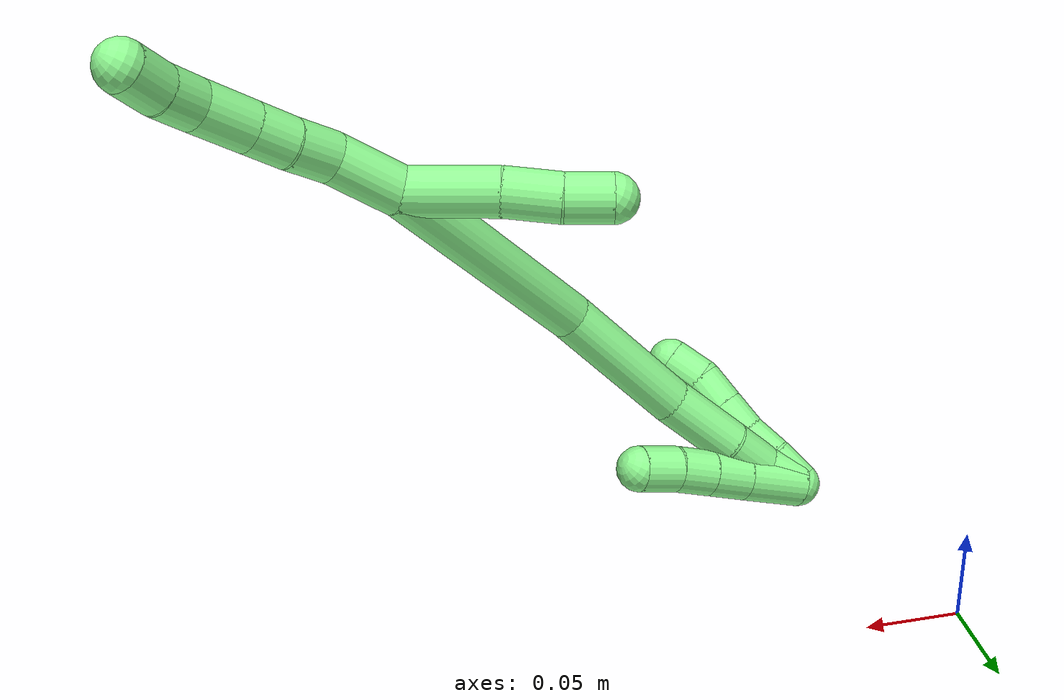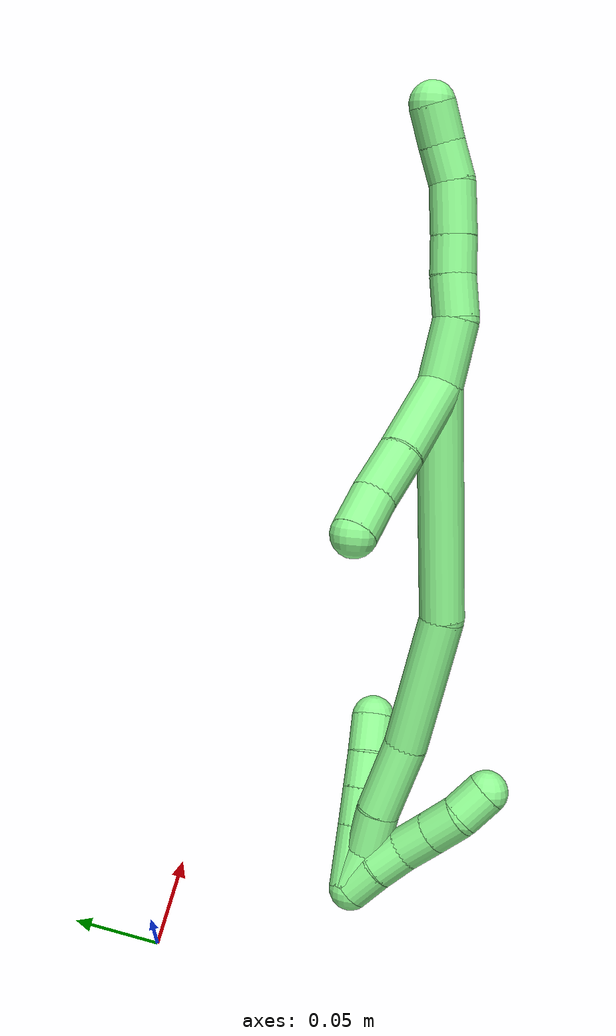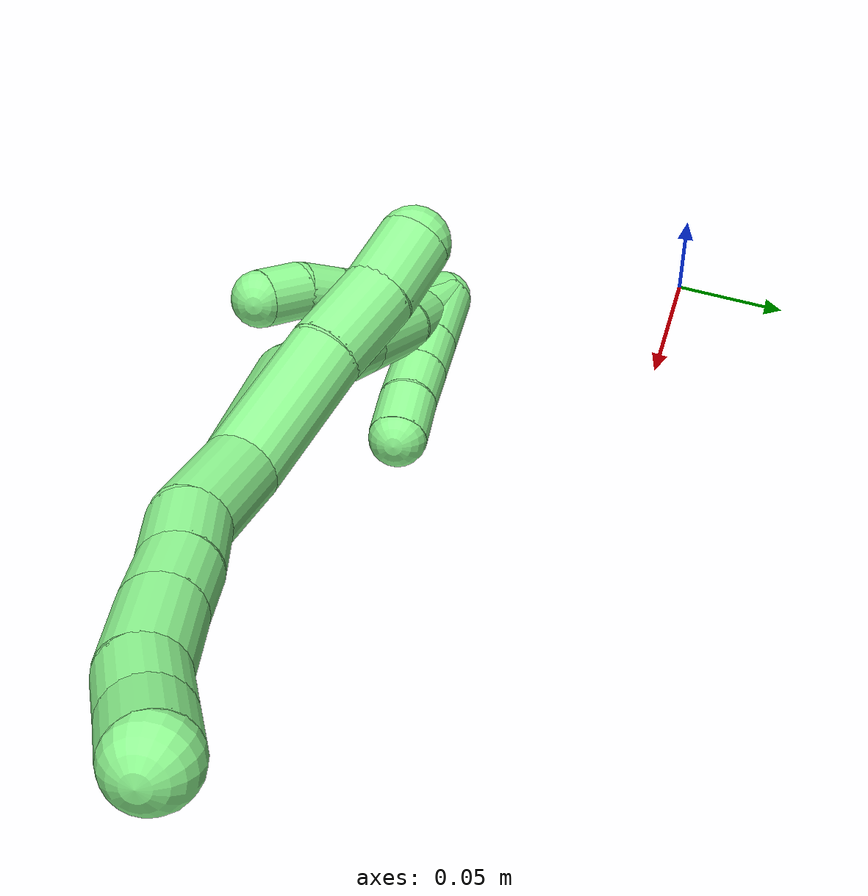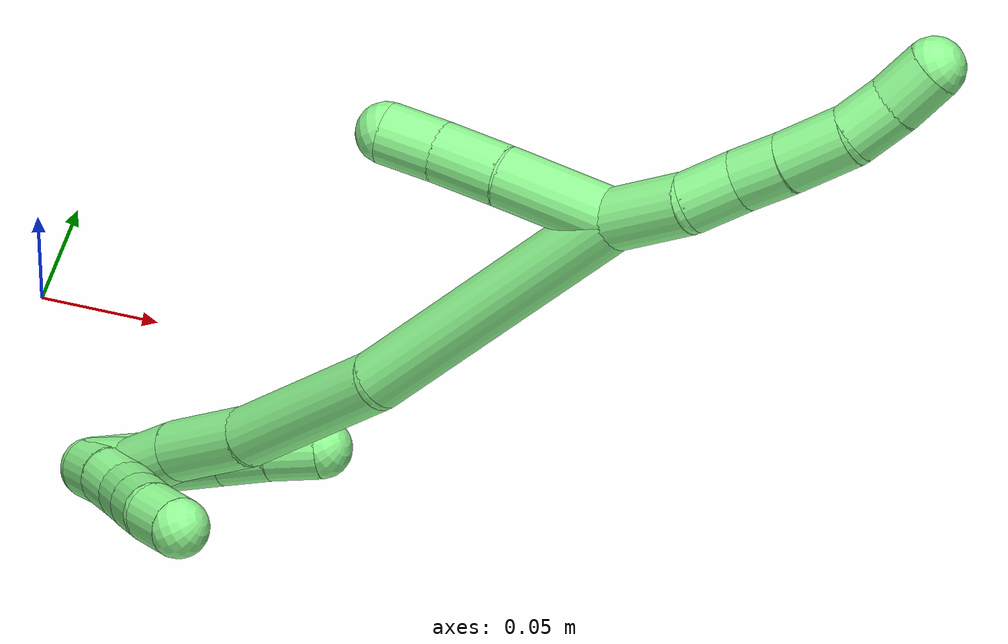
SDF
<sdf version="1.7">
 <world name="default">
  <model name="13">
   <static>0</static>
   <link name="13">
    <collision name="collision-cylinder-e_1_2_8">
     <pose>0.001662 -0.002811 0.017897 0.155767 0.091499 0.007146</pose>
     <geometry><cylinder><radius>0.0125</radius><length>0.036385</length></cylinder></geometry>
     <surface>
      <friction><ode><mu>1.16</mu><mu2>1.16</mu2><slip1>0</slip1><slip2>0</slip2></ode></friction>
      <contact><ode><kp>1e+06</kp><kd>1</kd><max_vel>0</max_vel><min_depth>0.001</min_depth></ode></contact>
     </surface>
    </collision>
    <visual name="visual-cylinder-e_1_2_8">
     <pose>0.001662 -0.002811 0.017897 0.155767 0.091499 0.007146</pose>
     <geometry><cylinder><radius>0.0125</radius><length>0.036385</length></cylinder></geometry>
     <material><ambient>0.564706 0.984314 0.572549 1</ambient></material>
    </visual>
    <collision name="collision-cylinder-e_2_8_9">
     <pose>0.005113 -0.003856 0.047055 -0.155428 0.155662 -0.012146</pose>
     <geometry><cylinder><radius>0.0125</radius><length>0.023076</length></cylinder></geometry>
     <surface>
      <friction><ode><mu>1.16</mu><mu2>1.16</mu2><slip1>0</slip1><slip2>0</slip2></ode></friction>
      <contact><ode><kp>1e+06</kp><kd>1</kd><max_vel>0</max_vel><min_depth>0.001</min_depth></ode></contact>
     </surface>
    </collision>
    <visual name="visual-cylinder-e_2_8_9">
     <pose>0.005113 -0.003856 0.047055 -0.155428 0.155662 -0.012146</pose>
     <geometry><cylinder><radius>0.0125</radius><length>0.023076</length></cylinder></geometry>
     <material><ambient>0.564706 0.984314 0.572549 1</ambient></material>
    </visual>
    <collision name="collision-cylinder-e_3_9_10">
     <pose>0.008195 -0.001482 0.06849 -0.059842 0.126132 -0.00378</pose>
     <geometry><cylinder><radius>0.0125</radius><length>0.020548</length></cylinder></geometry>
     <surface>
      <friction><ode><mu>1.16</mu><mu2>1.16</mu2><slip1>0</slip1><slip2>0</slip2></ode></friction>
      <contact><ode><kp>1e+06</kp><kd>1</kd><max_vel>0</max_vel><min_depth>0.001</min_depth></ode></contact>
     </surface>
    </collision>
    <visual name="visual-cylinder-e_3_9_10">
     <pose>0.008195 -0.001482 0.06849 -0.059842 0.126132 -0.00378</pose>
     <geometry><cylinder><radius>0.0125</radius><length>0.020548</length></cylinder></geometry>
     <material><ambient>0.564706 0.984314 0.572549 1</ambient></material>
    </visual>
    <collision name="collision-cylinder-e_4_10_11">
     <pose>0.011069 0.000698 0.092599 -0.112222 0.112313 -0.006315</pose>
     <geometry><cylinder><radius>0.0125</radius><length>0.028224</length></cylinder></geometry>
     <surface>
      <friction><ode><mu>1.16</mu><mu2>1.16</mu2><slip1>0</slip1><slip2>0</slip2></ode></friction>
      <contact><ode><kp>1e+06</kp><kd>1</kd><max_vel>0</max_vel><min_depth>0.001</min_depth></ode></contact>
     </surface>
    </collision>
    <visual name="visual-cylinder-e_4_10_11">
     <pose>0.011069 0.000698 0.092599 -0.112222 0.112313 -0.006315</pose>
     <geometry><cylinder><radius>0.0125</radius><length>0.028224</length></cylinder></geometry>
     <material><ambient>0.564706 0.984314 0.572549 1</ambient></material>
    </visual>
    <collision name="collision-cylinder-e_5_11_12">
     <pose>0.013065 0.005846 0.116192 -0.354815 0.040249 -0.007217</pose>
     <geometry><cylinder><radius>0.0125</radius><length>0.020617</length></cylinder></geometry>
     <surface>
      <friction><ode><mu>1.16</mu><mu2>1.16</mu2><slip1>0</slip1><slip2>0</slip2></ode></friction>
      <contact><ode><kp>1e+06</kp><kd>1</kd><max_vel>0</max_vel><min_depth>0.001</min_depth></ode></contact>
     </surface>
    </collision>
    <visual name="visual-cylinder-e_5_11_12">
     <pose>0.013065 0.005846 0.116192 -0.354815 0.040249 -0.007217</pose>
     <geometry><cylinder><radius>0.0125</radius><length>0.020617</length></cylinder></geometry>
     <material><ambient>0.564706 0.984314 0.572549 1</ambient></material>
    </visual>
    <collision name="collision-cylinder-e_6_12_6">
     <pose>0.012534 0.012952 0.135776 -0.341446 -0.089577 0.015453</pose>
     <geometry><cylinder><radius>0.0125</radius><length>0.02115</length></cylinder></geometry>
     <surface>
      <friction><ode><mu>1.16</mu><mu2>1.16</mu2><slip1>0</slip1><slip2>0</slip2></ode></friction>
      <contact><ode><kp>1e+06</kp><kd>1</kd><max_vel>0</max_vel><min_depth>0.001</min_depth></ode></contact>
     </surface>
    </collision>
    <visual name="visual-cylinder-e_6_12_6">
     <pose>0.012534 0.012952 0.135776 -0.341446 -0.089577 0.015453</pose>
     <geometry><cylinder><radius>0.0125</radius><length>0.02115</length></cylinder></geometry>
     <material><ambient>0.564706 0.984314 0.572549 1</ambient></material>
    </visual>
    <collision name="collision-cylinder-e_1_2_13">
     <pose>-0.013349 0.009371 -0.017103 -2.64035 -0.600259 1.75937</pose>
     <geometry><cylinder><radius>0.0125</radius><length>0.047266</length></cylinder></geometry>
     <surface>
      <friction><ode><mu>1.16</mu><mu2>1.16</mu2><slip1>0</slip1><slip2>0</slip2></ode></friction>
      <contact><ode><kp>1e+06</kp><kd>1</kd><max_vel>0</max_vel><min_depth>0.001</min_depth></ode></contact>
     </surface>
    </collision>
    <visual name="visual-cylinder-e_1_2_13">
     <pose>-0.013349 0.009371 -0.017103 -2.64035 -0.600259 1.75937</pose>
     <geometry><cylinder><radius>0.0125</radius><length>0.047266</length></cylinder></geometry>
     <material><ambient>0.564706 0.984314 0.572549 1</ambient></material>
    </visual>
    <collision name="collision-cylinder-e_2_13_14">
     <pose>-0.03369 0.025078 -0.045146 -2.61662 -0.505097 1.53045</pose>
     <geometry><cylinder><radius>0.0125</radius><length>0.028894</length></cylinder></geometry>
     <surface>
      <friction><ode><mu>1.16</mu><mu2>1.16</mu2><slip1>0</slip1><slip2>0</slip2></ode></friction>
      <contact><ode><kp>1e+06</kp><kd>1</kd><max_vel>0</max_vel><min_depth>0.001</min_depth></ode></contact>
     </surface>
    </collision>
    <visual name="visual-cylinder-e_2_13_14">
     <pose>-0.03369 0.025078 -0.045146 -2.61662 -0.505097 1.53045</pose>
     <geometry><cylinder><radius>0.0125</radius><length>0.028894</length></cylinder></geometry>
     <material><ambient>0.564706 0.984314 0.572549 1</ambient></material>
    </visual>
    <collision name="collision-cylinder-e_3_14_5">
     <pose>-0.047372 0.035725 -0.064959 -2.68935 -0.596111 1.85604</pose>
     <geometry><cylinder><radius>0.0125</radius><length>0.02384</length></cylinder></geometry>
     <surface>
      <friction><ode><mu>1.16</mu><mu2>1.16</mu2><slip1>0</slip1><slip2>0</slip2></ode></friction>
      <contact><ode><kp>1e+06</kp><kd>1</kd><max_vel>0</max_vel><min_depth>0.001</min_depth></ode></contact>
     </surface>
    </collision>
    <visual name="visual-cylinder-e_3_14_5">
     <pose>-0.047372 0.035725 -0.064959 -2.68935 -0.596111 1.85604</pose>
     <geometry><cylinder><radius>0.0125</radius><length>0.02384</length></cylinder></geometry>
     <material><ambient>0.564706 0.984314 0.572549 1</ambient></material>
    </visual>
    <collision name="collision-cylinder-e_1_2_15">
     <pose>0.006685 -0.006966 -0.063772 3.03279 0.103828 1.52393</pose>
     <geometry><cylinder><radius>0.0125</radius><length>0.128998</length></cylinder></geometry>
     <surface>
      <friction><ode><mu>1.16</mu><mu2>1.16</mu2><slip1>0</slip1><slip2>0</slip2></ode></friction>
      <contact><ode><kp>1e+06</kp><kd>1</kd><max_vel>0</max_vel><min_depth>0.001</min_depth></ode></contact>
     </surface>
    </collision>
    <visual name="visual-cylinder-e_1_2_15">
     <pose>0.006685 -0.006966 -0.063772 3.03279 0.103828 1.52393</pose>
     <geometry><cylinder><radius>0.0125</radius><length>0.128998</length></cylinder></geometry>
     <material><ambient>0.564706 0.984314 0.572549 1</ambient></material>
    </visual>
    <collision name="collision-cylinder-e_2_15_16">
     <pose>0.018606 -0.007596 -0.165906 -2.9779 0.133867 -1.37029</pose>
     <geometry><cylinder><radius>0.0125</radius><length>0.078465</length></cylinder></geometry>
     <surface>
      <friction><ode><mu>1.16</mu><mu2>1.16</mu2><slip1>0</slip1><slip2>0</slip2></ode></friction>
      <contact><ode><kp>1e+06</kp><kd>1</kd><max_vel>0</max_vel><min_depth>0.001</min_depth></ode></contact>
     </surface>
    </collision>
    <visual name="visual-cylinder-e_2_15_16">
     <pose>0.018606 -0.007596 -0.165906 -2.9779 0.133867 -1.37029</pose>
     <geometry><cylinder><radius>0.0125</radius><length>0.078465</length></cylinder></geometry>
     <material><ambient>0.564706 0.984314 0.572549 1</ambient></material>
    </visual>
    <collision name="collision-cylinder-e_3_16_17">
     <pose>0.025038 0.004847 -0.224915 -2.85402 0.055477 -0.378668</pose>
     <geometry><cylinder><radius>0.0125</radius><length>0.043129</length></cylinder></geometry>
     <surface>
      <friction><ode><mu>1.16</mu><mu2>1.16</mu2><slip1>0</slip1><slip2>0</slip2></ode></friction>
      <contact><ode><kp>1e+06</kp><kd>1</kd><max_vel>0</max_vel><min_depth>0.001</min_depth></ode></contact>
     </surface>
    </collision>
    <visual name="visual-cylinder-e_3_16_17">
     <pose>0.025038 0.004847 -0.224915 -2.85402 0.055477 -0.378668</pose>
     <geometry><cylinder><radius>0.0125</radius><length>0.043129</length></cylinder></geometry>
     <material><ambient>0.564706 0.984314 0.572549 1</ambient></material>
    </visual>
    <collision name="collision-cylinder-e_4_17_18">
     <pose>0.027218 0.012952 -0.258331 -2.98637 0.075994 -0.909365</pose>
     <geometry><cylinder><radius>0.0125</radius><length>0.025924</length></cylinder></geometry>
     <surface>
      <friction><ode><mu>1.16</mu><mu2>1.16</mu2><slip1>0</slip1><slip2>0</slip2></ode></friction>
      <contact><ode><kp>1e+06</kp><kd>1</kd><max_vel>0</max_vel><min_depth>0.001</min_depth></ode></contact>
     </surface>
    </collision>
    <visual name="visual-cylinder-e_4_17_18">
     <pose>0.027218 0.012952 -0.258331 -2.98637 0.075994 -0.909365</pose>
     <geometry><cylinder><radius>0.0125</radius><length>0.025924</length></cylinder></geometry>
     <material><ambient>0.564706 0.984314 0.572549 1</ambient></material>
    </visual>
    <collision name="collision-cylinder-e_5_18_1">
     <pose>0.026955 0.018818 -0.282117 -2.80389 -0.106362 0.605321</pose>
     <geometry><cylinder><radius>0.0125</radius><length>0.023484</length></cylinder></geometry>
     <surface>
      <friction><ode><mu>1.16</mu><mu2>1.16</mu2><slip1>0</slip1><slip2>0</slip2></ode></friction>
      <contact><ode><kp>1e+06</kp><kd>1</kd><max_vel>0</max_vel><min_depth>0.001</min_depth></ode></contact>
     </surface>
    </collision>
    <visual name="visual-cylinder-e_5_18_1">
     <pose>0.026955 0.018818 -0.282117 -2.80389 -0.106362 0.605321</pose>
     <geometry><cylinder><radius>0.0125</radius><length>0.023484</length></cylinder></geometry>
     <material><ambient>0.564706 0.984314 0.572549 1</ambient></material>
    </visual>
    <collision name="collision-cylinder-e_1_1_19">
     <pose>0.031701 0.021465 -0.276651 0.074015 0.34786 0.013011</pose>
     <geometry><cylinder><radius>0.0125</radius><length>0.03516</length></cylinder></geometry>
     <surface>
      <friction><ode><mu>1.16</mu><mu2>1.16</mu2><slip1>0</slip1><slip2>0</slip2></ode></friction>
      <contact><ode><kp>1e+06</kp><kd>1</kd><max_vel>0</max_vel><min_depth>0.001</min_depth></ode></contact>
     </surface>
    </collision>
    <visual name="visual-cylinder-e_1_1_19">
     <pose>0.031701 0.021465 -0.276651 0.074015 0.34786 0.013011</pose>
     <geometry><cylinder><radius>0.0125</radius><length>0.03516</length></cylinder></geometry>
     <material><ambient>0.564706 0.984314 0.572549 1</ambient></material>
    </visual>
    <collision name="collision-cylinder-e_2_19_20">
     <pose>0.041331 0.019564 -0.249734 0.064938 0.334668 0.010973</pose>
     <geometry><cylinder><radius>0.0125</radius><length>0.022143</length></cylinder></geometry>
     <surface>
      <friction><ode><mu>1.16</mu><mu2>1.16</mu2><slip1>0</slip1><slip2>0</slip2></ode></friction>
      <contact><ode><kp>1e+06</kp><kd>1</kd><max_vel>0</max_vel><min_depth>0.001</min_depth></ode></contact>
     </surface>
    </collision>
    <visual name="visual-cylinder-e_2_19_20">
     <pose>0.041331 0.019564 -0.249734 0.064938 0.334668 0.010973</pose>
     <geometry><cylinder><radius>0.0125</radius><length>0.022143</length></cylinder></geometry>
     <material><ambient>0.564706 0.984314 0.572549 1</ambient></material>
    </visual>
    <collision name="collision-cylinder-e_3_20_21">
     <pose>0.048471 0.018224 -0.229483 0.067242 0.342117 0.01162</pose>
     <geometry><cylinder><radius>0.0125</radius><length>0.020887</length></cylinder></geometry>
     <surface>
      <friction><ode><mu>1.16</mu><mu2>1.16</mu2><slip1>0</slip1><slip2>0</slip2></ode></friction>
      <contact><ode><kp>1e+06</kp><kd>1</kd><max_vel>0</max_vel><min_depth>0.001</min_depth></ode></contact>
     </surface>
    </collision>
    <visual name="visual-cylinder-e_3_20_21">
     <pose>0.048471 0.018224 -0.229483 0.067242 0.342117 0.01162</pose>
     <geometry><cylinder><radius>0.0125</radius><length>0.020887</length></cylinder></geometry>
     <material><ambient>0.564706 0.984314 0.572549 1</ambient></material>
    </visual>
    <collision name="collision-cylinder-e_4_21_4">
     <pose>0.05668 0.017075 -0.209841 0.049601 0.446109 0.011253</pose>
     <geometry><cylinder><radius>0.0125</radius><length>0.02181</length></cylinder></geometry>
     <surface>
      <friction><ode><mu>1.16</mu><mu2>1.16</mu2><slip1>0</slip1><slip2>0</slip2></ode></friction>
      <contact><ode><kp>1e+06</kp><kd>1</kd><max_vel>0</max_vel><min_depth>0.001</min_depth></ode></contact>
     </surface>
    </collision>
    <visual name="visual-cylinder-e_4_21_4">
     <pose>0.05668 0.017075 -0.209841 0.049601 0.446109 0.011253</pose>
     <geometry><cylinder><radius>0.0125</radius><length>0.02181</length></cylinder></geometry>
     <material><ambient>0.564706 0.984314 0.572549 1</ambient></material>
    </visual>
    <collision name="collision-cylinder-e_1_1_22">
     <pose>0.024175 0.016031 -0.285829 0.738938 -0.153984 -0.059731</pose>
     <geometry><cylinder><radius>0.0125</radius><length>0.02</length></cylinder></geometry>
     <surface>
      <friction><ode><mu>1.16</mu><mu2>1.16</mu2><slip1>0</slip1><slip2>0</slip2></ode></friction>
      <contact><ode><kp>1e+06</kp><kd>1</kd><max_vel>0</max_vel><min_depth>0.001</min_depth></ode></contact>
     </surface>
    </collision>
    <visual name="visual-cylinder-e_1_1_22">
     <pose>0.024175 0.016031 -0.285829 0.738938 -0.153984 -0.059731</pose>
     <geometry><cylinder><radius>0.0125</radius><length>0.02</length></cylinder></geometry>
     <material><ambient>0.564706 0.984314 0.572549 1</ambient></material>
    </visual>
    <collision name="collision-cylinder-e_2_22_23">
     <pose>0.021833 0.002064 -0.271751 0.823592 -0.080904 -0.035352</pose>
     <geometry><cylinder><radius>0.0125</radius><length>0.02</length></cylinder></geometry>
     <surface>
      <friction><ode><mu>1.16</mu><mu2>1.16</mu2><slip1>0</slip1><slip2>0</slip2></ode></friction>
      <contact><ode><kp>1e+06</kp><kd>1</kd><max_vel>0</max_vel><min_depth>0.001</min_depth></ode></contact>
     </surface>
    </collision>
    <visual name="visual-cylinder-e_2_22_23">
     <pose>0.021833 0.002064 -0.271751 0.823592 -0.080904 -0.035352</pose>
     <geometry><cylinder><radius>0.0125</radius><length>0.02</length></cylinder></geometry>
     <material><ambient>0.564706 0.984314 0.572549 1</ambient></material>
    </visual>
    <collision name="collision-cylinder-e_3_23_24">
     <pose>0.018635 -0.012517 -0.258539 0.845902 -0.241362 -0.109064</pose>
     <geometry><cylinder><radius>0.0125</radius><length>0.02</length></cylinder></geometry>
     <surface>
      <friction><ode><mu>1.16</mu><mu2>1.16</mu2><slip1>0</slip1><slip2>0</slip2></ode></friction>
      <contact><ode><kp>1e+06</kp><kd>1</kd><max_vel>0</max_vel><min_depth>0.001</min_depth></ode></contact>
     </surface>
    </collision>
    <visual name="visual-cylinder-e_3_23_24">
     <pose>0.018635 -0.012517 -0.258539 0.845902 -0.241362 -0.109064</pose>
     <geometry><cylinder><radius>0.0125</radius><length>0.02</length></cylinder></geometry>
     <material><ambient>0.564706 0.984314 0.572549 1</ambient></material>
    </visual>
    <collision name="collision-cylinder-e_4_24_25">
     <pose>0.01373 -0.026902 -0.24554 0.826045 -0.254128 -0.111853</pose>
     <geometry><cylinder><radius>0.0125</radius><length>0.02</length></cylinder></geometry>
     <surface>
      <friction><ode><mu>1.16</mu><mu2>1.16</mu2><slip1>0</slip1><slip2>0</slip2></ode></friction>
      <contact><ode><kp>1e+06</kp><kd>1</kd><max_vel>0</max_vel><min_depth>0.001</min_depth></ode></contact>
     </surface>
    </collision>
    <visual name="visual-cylinder-e_4_24_25">
     <pose>0.01373 -0.026902 -0.24554 0.826045 -0.254128 -0.111853</pose>
     <geometry><cylinder><radius>0.0125</radius><length>0.02</length></cylinder></geometry>
     <material><ambient>0.564706 0.984314 0.572549 1</ambient></material>
    </visual>
    <collision name="collision-cylinder-e_5_25_3">
     <pose>0.011547 -0.040749 -0.231592 0.738902 0.033057 0.012802</pose>
     <geometry><cylinder><radius>0.0125</radius><length>0.02</length></cylinder></geometry>
     <surface>
      <friction><ode><mu>1.16</mu><mu2>1.16</mu2><slip1>0</slip1><slip2>0</slip2></ode></friction>
      <contact><ode><kp>1e+06</kp><kd>1</kd><max_vel>0</max_vel><min_depth>0.001</min_depth></ode></contact>
     </surface>
    </collision>
    <visual name="visual-cylinder-e_5_25_3">
     <pose>0.011547 -0.040749 -0.231592 0.738902 0.033057 0.012802</pose>
     <geometry><cylinder><radius>0.0125</radius><length>0.02</length></cylinder></geometry>
     <material><ambient>0.564706 0.984314 0.572549 1</ambient></material>
    </visual>
    <collision name="collision-sphere-3">
     <pose>0.011877 -0.04748 -0.224204 0 -0 0</pose>
     <geometry><sphere><radius>0.0125</radius></sphere></geometry>
     <surface>
      <friction><ode><mu>1.16</mu><mu2>1.16</mu2><slip1>0</slip1><slip2>0</slip2></ode></friction>
      <contact><ode><kp>1e+06</kp><kd>1</kd><max_vel>0</max_vel><min_depth>0.001</min_depth></ode></contact>
     </surface>
    </collision>
    <visual name="visual-sphere-3">
     <pose>0.011877 -0.04748 -0.224204 0 -0 0</pose>
     <geometry><sphere><radius>0.0125</radius></sphere></geometry>
     <material><ambient>0.564706 0.984314 0.572549 1</ambient></material>
    </visual>
    <collision name="collision-sphere-25">
     <pose>0.011216 -0.034018 -0.23898 0 -0 0</pose>
     <geometry><sphere><radius>0.0125</radius></sphere></geometry>
     <surface>
      <friction><ode><mu>1.16</mu><mu2>1.16</mu2><slip1>0</slip1><slip2>0</slip2></ode></friction>
      <contact><ode><kp>1e+06</kp><kd>1</kd><max_vel>0</max_vel><min_depth>0.001</min_depth></ode></contact>
     </surface>
    </collision>
    <visual name="visual-sphere-25">
     <pose>0.011216 -0.034018 -0.23898 0 -0 0</pose>
     <geometry><sphere><radius>0.0125</radius></sphere></geometry>
     <material><ambient>0.564706 0.984314 0.572549 1</ambient></material>
    </visual>
    <collision name="collision-sphere-24">
     <pose>0.016244 -0.019785 -0.2521 0 -0 0</pose>
     <geometry><sphere><radius>0.0125</radius></sphere></geometry>
     <surface>
      <friction><ode><mu>1.16</mu><mu2>1.16</mu2><slip1>0</slip1><slip2>0</slip2></ode></friction>
      <contact><ode><kp>1e+06</kp><kd>1</kd><max_vel>0</max_vel><min_depth>0.001</min_depth></ode></contact>
     </surface>
    </collision>
    <visual name="visual-sphere-24">
     <pose>0.016244 -0.019785 -0.2521 0 -0 0</pose>
     <geometry><sphere><radius>0.0125</radius></sphere></geometry>
     <material><ambient>0.564706 0.984314 0.572549 1</ambient></material>
    </visual>
    <collision name="collision-sphere-23">
     <pose>0.021025 -0.005248 -0.264977 0 -0 0</pose>
     <geometry><sphere><radius>0.0125</radius></sphere></geometry>
     <surface>
      <friction><ode><mu>1.16</mu><mu2>1.16</mu2><slip1>0</slip1><slip2>0</slip2></ode></friction>
      <contact><ode><kp>1e+06</kp><kd>1</kd><max_vel>0</max_vel><min_depth>0.001</min_depth></ode></contact>
     </surface>
    </collision>
    <visual name="visual-sphere-23">
     <pose>0.021025 -0.005248 -0.264977 0 -0 0</pose>
     <geometry><sphere><radius>0.0125</radius></sphere></geometry>
     <material><ambient>0.564706 0.984314 0.572549 1</ambient></material>
    </visual>
    <collision name="collision-sphere-22">
     <pose>0.022641 0.009376 -0.278524 0 -0 0</pose>
     <geometry><sphere><radius>0.0125</radius></sphere></geometry>
     <surface>
      <friction><ode><mu>1.16</mu><mu2>1.16</mu2><slip1>0</slip1><slip2>0</slip2></ode></friction>
      <contact><ode><kp>1e+06</kp><kd>1</kd><max_vel>0</max_vel><min_depth>0.001</min_depth></ode></contact>
     </surface>
    </collision>
    <visual name="visual-sphere-22">
     <pose>0.022641 0.009376 -0.278524 0 -0 0</pose>
     <geometry><sphere><radius>0.0125</radius></sphere></geometry>
     <material><ambient>0.564706 0.984314 0.572549 1</ambient></material>
    </visual>
    <collision name="collision-sphere-4">
     <pose>0.061384 0.016588 -0.200016 0 -0 0</pose>
     <geometry><sphere><radius>0.0125</radius></sphere></geometry>
     <surface>
      <friction><ode><mu>1.16</mu><mu2>1.16</mu2><slip1>0</slip1><slip2>0</slip2></ode></friction>
      <contact><ode><kp>1e+06</kp><kd>1</kd><max_vel>0</max_vel><min_depth>0.001</min_depth></ode></contact>
     </surface>
    </collision>
    <visual name="visual-sphere-4">
     <pose>0.061384 0.016588 -0.200016 0 -0 0</pose>
     <geometry><sphere><radius>0.0125</radius></sphere></geometry>
     <material><ambient>0.564706 0.984314 0.572549 1</ambient></material>
    </visual>
    <collision name="collision-sphere-21">
     <pose>0.051975 0.017563 -0.219667 0 -0 0</pose>
     <geometry><sphere><radius>0.0125</radius></sphere></geometry>
     <surface>
      <friction><ode><mu>1.16</mu><mu2>1.16</mu2><slip1>0</slip1><slip2>0</slip2></ode></friction>
      <contact><ode><kp>1e+06</kp><kd>1</kd><max_vel>0</max_vel><min_depth>0.001</min_depth></ode></contact>
     </surface>
    </collision>
    <visual name="visual-sphere-21">
     <pose>0.051975 0.017563 -0.219667 0 -0 0</pose>
     <geometry><sphere><radius>0.0125</radius></sphere></geometry>
     <material><ambient>0.564706 0.984314 0.572549 1</ambient></material>
    </visual>
    <collision name="collision-sphere-20">
     <pose>0.044967 0.018885 -0.239299 0 -0 0</pose>
     <geometry><sphere><radius>0.0125</radius></sphere></geometry>
     <surface>
      <friction><ode><mu>1.16</mu><mu2>1.16</mu2><slip1>0</slip1><slip2>0</slip2></ode></friction>
      <contact><ode><kp>1e+06</kp><kd>1</kd><max_vel>0</max_vel><min_depth>0.001</min_depth></ode></contact>
     </surface>
    </collision>
    <visual name="visual-sphere-20">
     <pose>0.044967 0.018885 -0.239299 0 -0 0</pose>
     <geometry><sphere><radius>0.0125</radius></sphere></geometry>
     <material><ambient>0.564706 0.984314 0.572549 1</ambient></material>
    </visual>
    <collision name="collision-sphere-12">
     <pose>0.01348 0.009425 0.125851 0 -0 0</pose>
     <geometry><sphere><radius>0.0125</radius></sphere></geometry>
     <surface>
      <friction><ode><mu>1.16</mu><mu2>1.16</mu2><slip1>0</slip1><slip2>0</slip2></ode></friction>
      <contact><ode><kp>1e+06</kp><kd>1</kd><max_vel>0</max_vel><min_depth>0.001</min_depth></ode></contact>
     </surface>
    </collision>
    <visual name="visual-sphere-12">
     <pose>0.01348 0.009425 0.125851 0 -0 0</pose>
     <geometry><sphere><radius>0.0125</radius></sphere></geometry>
     <material><ambient>0.564706 0.984314 0.572549 1</ambient></material>
    </visual>
    <collision name="collision-sphere-11">
     <pose>0.01265 0.002268 0.106534 0 -0 0</pose>
     <geometry><sphere><radius>0.0125</radius></sphere></geometry>
     <surface>
      <friction><ode><mu>1.16</mu><mu2>1.16</mu2><slip1>0</slip1><slip2>0</slip2></ode></friction>
      <contact><ode><kp>1e+06</kp><kd>1</kd><max_vel>0</max_vel><min_depth>0.001</min_depth></ode></contact>
     </surface>
    </collision>
    <visual name="visual-sphere-11">
     <pose>0.01265 0.002268 0.106534 0 -0 0</pose>
     <geometry><sphere><radius>0.0125</radius></sphere></geometry>
     <material><ambient>0.564706 0.984314 0.572549 1</ambient></material>
    </visual>
    <collision name="collision-sphere-10">
     <pose>0.009487 -0.000873 0.078664 0 -0 0</pose>
     <geometry><sphere><radius>0.0125</radius></sphere></geometry>
     <surface>
      <friction><ode><mu>1.16</mu><mu2>1.16</mu2><slip1>0</slip1><slip2>0</slip2></ode></friction>
      <contact><ode><kp>1e+06</kp><kd>1</kd><max_vel>0</max_vel><min_depth>0.001</min_depth></ode></contact>
     </surface>
    </collision>
    <visual name="visual-sphere-10">
     <pose>0.009487 -0.000873 0.078664 0 -0 0</pose>
     <geometry><sphere><radius>0.0125</radius></sphere></geometry>
     <material><ambient>0.564706 0.984314 0.572549 1</ambient></material>
    </visual>
    <collision name="collision-sphere-9">
     <pose>0.006902 -0.002092 0.058316 0 -0 0</pose>
     <geometry><sphere><radius>0.0125</radius></sphere></geometry>
     <surface>
      <friction><ode><mu>1.16</mu><mu2>1.16</mu2><slip1>0</slip1><slip2>0</slip2></ode></friction>
      <contact><ode><kp>1e+06</kp><kd>1</kd><max_vel>0</max_vel><min_depth>0.001</min_depth></ode></contact>
     </surface>
    </collision>
    <visual name="visual-sphere-9">
     <pose>0.006902 -0.002092 0.058316 0 -0 0</pose>
     <geometry><sphere><radius>0.0125</radius></sphere></geometry>
     <material><ambient>0.564706 0.984314 0.572549 1</ambient></material>
    </visual>
    <collision name="collision-sphere-2">
     <geometry><sphere><radius>0.0125</radius></sphere></geometry>
     <surface>
      <friction><ode><mu>1.16</mu><mu2>1.16</mu2><slip1>0</slip1><slip2>0</slip2></ode></friction>
      <contact><ode><kp>1e+06</kp><kd>1</kd><max_vel>0</max_vel><min_depth>0.001</min_depth></ode></contact>
     </surface>
    </collision>
    <visual name="visual-sphere-2">
     <geometry><sphere><radius>0.0125</radius></sphere></geometry>
     <material><ambient>0.564706 0.984314 0.572549 1</ambient></material>
    </visual>
    <collision name="collision-sphere-19">
     <pose>0.037694 0.020242 -0.260169 0 -0 0</pose>
     <geometry><sphere><radius>0.0125</radius></sphere></geometry>
     <surface>
      <friction><ode><mu>1.16</mu><mu2>1.16</mu2><slip1>0</slip1><slip2>0</slip2></ode></friction>
      <contact><ode><kp>1e+06</kp><kd>1</kd><max_vel>0</max_vel><min_depth>0.001</min_depth></ode></contact>
     </surface>
    </collision>
    <visual name="visual-sphere-19">
     <pose>0.037694 0.020242 -0.260169 0 -0 0</pose>
     <geometry><sphere><radius>0.0125</radius></sphere></geometry>
     <material><ambient>0.564706 0.984314 0.572549 1</ambient></material>
    </visual>
    <collision name="collision-sphere-8">
     <pose>0.003325 -0.005621 0.035794 0 -0 0</pose>
     <geometry><sphere><radius>0.0125</radius></sphere></geometry>
     <surface>
      <friction><ode><mu>1.16</mu><mu2>1.16</mu2><slip1>0</slip1><slip2>0</slip2></ode></friction>
      <contact><ode><kp>1e+06</kp><kd>1</kd><max_vel>0</max_vel><min_depth>0.001</min_depth></ode></contact>
     </surface>
    </collision>
    <visual name="visual-sphere-8">
     <pose>0.003325 -0.005621 0.035794 0 -0 0</pose>
     <geometry><sphere><radius>0.0125</radius></sphere></geometry>
     <material><ambient>0.564706 0.984314 0.572549 1</ambient></material>
    </visual>
    <collision name="collision-sphere-6">
     <pose>0.011588 0.016479 0.145701 0 -0 0</pose>
     <geometry><sphere><radius>0.0125</radius></sphere></geometry>
     <surface>
      <friction><ode><mu>1.16</mu><mu2>1.16</mu2><slip1>0</slip1><slip2>0</slip2></ode></friction>
      <contact><ode><kp>1e+06</kp><kd>1</kd><max_vel>0</max_vel><min_depth>0.001</min_depth></ode></contact>
     </surface>
    </collision>
    <visual name="visual-sphere-6">
     <pose>0.011588 0.016479 0.145701 0 -0 0</pose>
     <geometry><sphere><radius>0.0125</radius></sphere></geometry>
     <material><ambient>0.564706 0.984314 0.572549 1</ambient></material>
    </visual>
    <collision name="collision-sphere-13">
     <pose>-0.026699 0.018742 -0.034206 0 -0 0</pose>
     <geometry><sphere><radius>0.0125</radius></sphere></geometry>
     <surface>
      <friction><ode><mu>1.16</mu><mu2>1.16</mu2><slip1>0</slip1><slip2>0</slip2></ode></friction>
      <contact><ode><kp>1e+06</kp><kd>1</kd><max_vel>0</max_vel><min_depth>0.001</min_depth></ode></contact>
     </surface>
    </collision>
    <visual name="visual-sphere-13">
     <pose>-0.026699 0.018742 -0.034206 0 -0 0</pose>
     <geometry><sphere><radius>0.0125</radius></sphere></geometry>
     <material><ambient>0.564706 0.984314 0.572549 1</ambient></material>
    </visual>
    <collision name="collision-sphere-14">
     <pose>-0.04068 0.031415 -0.056087 0 -0 0</pose>
     <geometry><sphere><radius>0.0125</radius></sphere></geometry>
     <surface>
      <friction><ode><mu>1.16</mu><mu2>1.16</mu2><slip1>0</slip1><slip2>0</slip2></ode></friction>
      <contact><ode><kp>1e+06</kp><kd>1</kd><max_vel>0</max_vel><min_depth>0.001</min_depth></ode></contact>
     </surface>
    </collision>
    <visual name="visual-sphere-14">
     <pose>-0.04068 0.031415 -0.056087 0 -0 0</pose>
     <geometry><sphere><radius>0.0125</radius></sphere></geometry>
     <material><ambient>0.564706 0.984314 0.572549 1</ambient></material>
    </visual>
    <collision name="collision-sphere-5">
     <pose>-0.054065 0.040036 -0.073831 0 -0 0</pose>
     <geometry><sphere><radius>0.0125</radius></sphere></geometry>
     <surface>
      <friction><ode><mu>1.16</mu><mu2>1.16</mu2><slip1>0</slip1><slip2>0</slip2></ode></friction>
      <contact><ode><kp>1e+06</kp><kd>1</kd><max_vel>0</max_vel><min_depth>0.001</min_depth></ode></contact>
     </surface>
    </collision>
    <visual name="visual-sphere-5">
     <pose>-0.054065 0.040036 -0.073831 0 -0 0</pose>
     <geometry><sphere><radius>0.0125</radius></sphere></geometry>
     <material><ambient>0.564706 0.984314 0.572549 1</ambient></material>
    </visual>
    <collision name="collision-sphere-15">
     <pose>0.01337 -0.013932 -0.127545 0 -0 0</pose>
     <geometry><sphere><radius>0.0125</radius></sphere></geometry>
     <surface>
      <friction><ode><mu>1.16</mu><mu2>1.16</mu2><slip1>0</slip1><slip2>0</slip2></ode></friction>
      <contact><ode><kp>1e+06</kp><kd>1</kd><max_vel>0</max_vel><min_depth>0.001</min_depth></ode></contact>
     </surface>
    </collision>
    <visual name="visual-sphere-15">
     <pose>0.01337 -0.013932 -0.127545 0 -0 0</pose>
     <geometry><sphere><radius>0.0125</radius></sphere></geometry>
     <material><ambient>0.564706 0.984314 0.572549 1</ambient></material>
    </visual>
    <collision name="collision-sphere-16">
     <pose>0.023842 -0.00126 -0.204268 0 -0 0</pose>
     <geometry><sphere><radius>0.0125</radius></sphere></geometry>
     <surface>
      <friction><ode><mu>1.16</mu><mu2>1.16</mu2><slip1>0</slip1><slip2>0</slip2></ode></friction>
      <contact><ode><kp>1e+06</kp><kd>1</kd><max_vel>0</max_vel><min_depth>0.001</min_depth></ode></contact>
     </surface>
    </collision>
    <visual name="visual-sphere-16">
     <pose>0.023842 -0.00126 -0.204268 0 -0 0</pose>
     <geometry><sphere><radius>0.0125</radius></sphere></geometry>
     <material><ambient>0.564706 0.984314 0.572549 1</ambient></material>
    </visual>
    <collision name="collision-sphere-17">
     <pose>0.026234 0.010954 -0.245562 0 -0 0</pose>
     <geometry><sphere><radius>0.0125</radius></sphere></geometry>
     <surface>
      <friction><ode><mu>1.16</mu><mu2>1.16</mu2><slip1>0</slip1><slip2>0</slip2></ode></friction>
      <contact><ode><kp>1e+06</kp><kd>1</kd><max_vel>0</max_vel><min_depth>0.001</min_depth></ode></contact>
     </surface>
    </collision>
    <visual name="visual-sphere-17">
     <pose>0.026234 0.010954 -0.245562 0 -0 0</pose>
     <geometry><sphere><radius>0.0125</radius></sphere></geometry>
     <material><ambient>0.564706 0.984314 0.572549 1</ambient></material>
    </visual>
    <collision name="collision-sphere-18">
     <pose>0.028202 0.01495 -0.271101 0 -0 0</pose>
     <geometry><sphere><radius>0.0125</radius></sphere></geometry>
     <surface>
      <friction><ode><mu>1.16</mu><mu2>1.16</mu2><slip1>0</slip1><slip2>0</slip2></ode></friction>
      <contact><ode><kp>1e+06</kp><kd>1</kd><max_vel>0</max_vel><min_depth>0.001</min_depth></ode></contact>
     </surface>
    </collision>
    <visual name="visual-sphere-18">
     <pose>0.028202 0.01495 -0.271101 0 -0 0</pose>
     <geometry><sphere><radius>0.0125</radius></sphere></geometry>
     <material><ambient>0.564706 0.984314 0.572549 1</ambient></material>
    </visual>
    <collision name="collision-sphere-1">
     <pose>0.025709 0.022687 -0.293133 0 -0 0</pose>
     <geometry><sphere><radius>0.0125</radius></sphere></geometry>
     <surface>
      <friction><ode><mu>1.16</mu><mu2>1.16</mu2><slip1>0</slip1><slip2>0</slip2></ode></friction>
      <contact><ode><kp>1e+06</kp><kd>1</kd><max_vel>0</max_vel><min_depth>0.001</min_depth></ode></contact>
     </surface>
    </collision>
    <visual name="visual-sphere-1">
     <pose>0.025709 0.022687 -0.293133 0 -0 0</pose>
     <geometry><sphere><radius>0.0125</radius></sphere></geometry>
     <material><ambient>0.564706 0.984314 0.572549 1</ambient></material>
    </visual>
    <inertial>
     <pose>0.01237 0.003204 -0.116527 0 -0 0</pose>
     <mass>0.75</mass>
     <inertia>
      <ixx>0.000207</ixx>
      <ixy>0</ixy>
      <ixz>0</ixz>
      <iyy>0.000161</iyy>
      <iyz>0</iyz>
      <izz>-1.7e-05</izz>
     </inertia>
    </inertial>
   </link>
   <pose>0.26693 -0.089275 0.228019 0.031714 0.891152 0.207923</pose>
  </model>
 </world>
</sdf>
